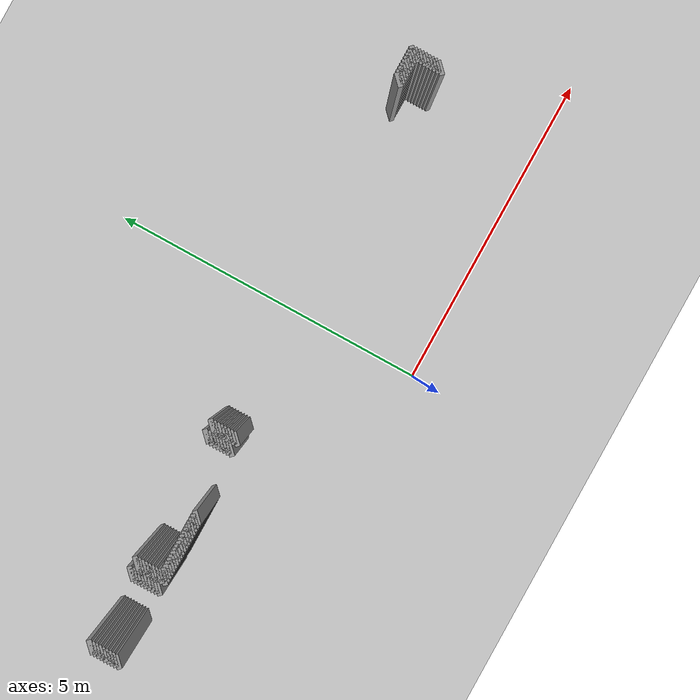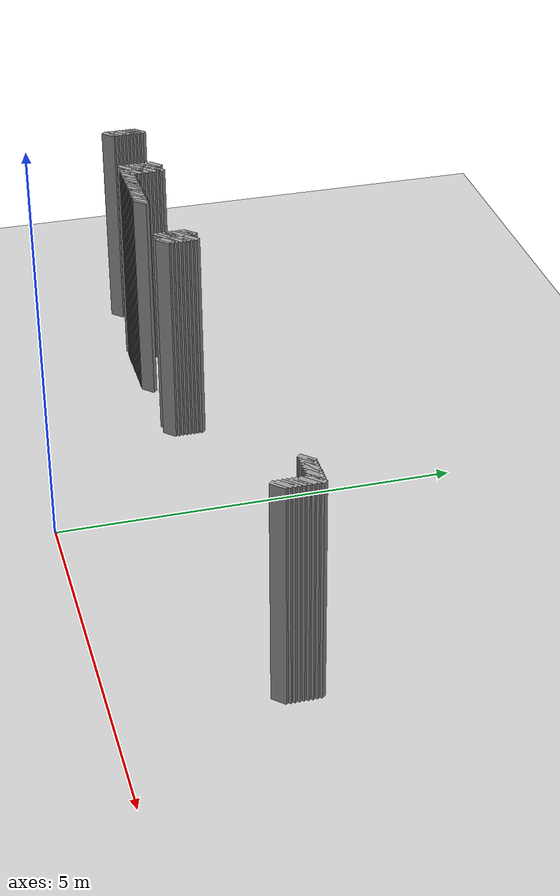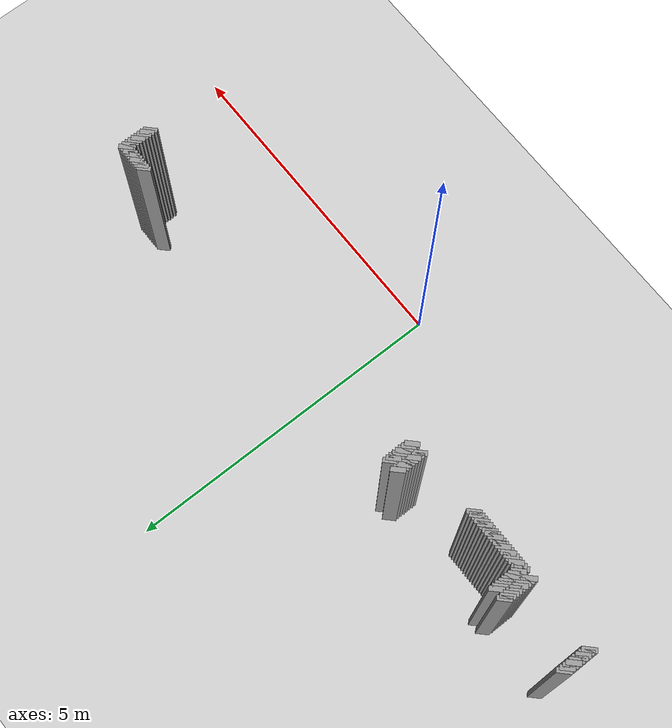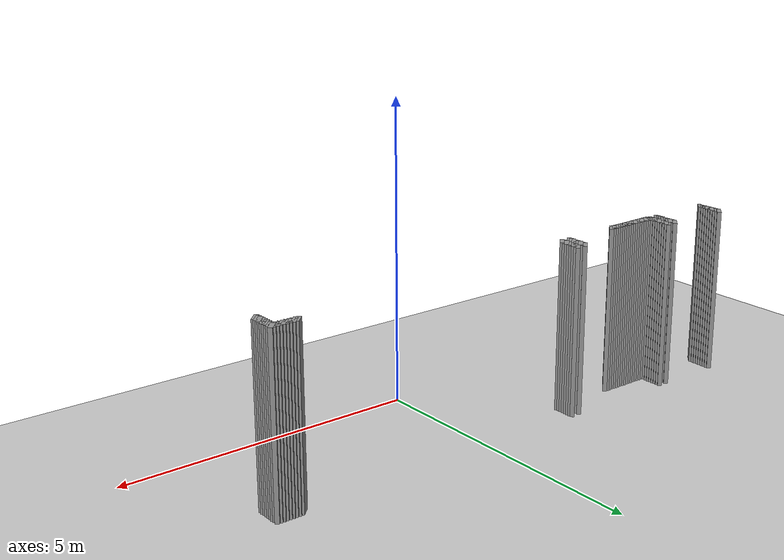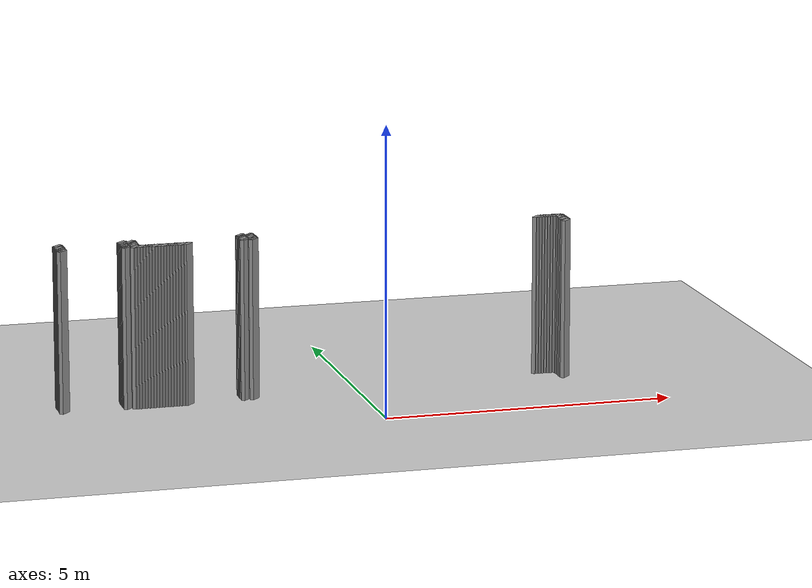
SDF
<sdf version="1.5">
 <world name="default">
  <include><uri>model://ground_plane</uri></include>
  <include><uri>model://sun</uri></include>
  <model name="grey_wall_630">
   <static>1</static>
   <link name="link">
    <pose>3.325 2.225  1.4 0 0 -0.785398163397</pose>
    <collision name="collision"><geometry><box><size>0.0707106781187 .2  2.8</size></box></geometry></collision>
    <visual name="visual">
     <cast_shadows>0</cast_shadows>
     <geometry><box><size>0.0707106781187 .2  2.8</size></box></geometry>
     <material>
      <script>
       <uri>model://grey_wall/materials/scripts</uri>
       <uri>model://grey_wall/materials/textures</uri>
       <name>vrc/grey_wall</name>
      </script>
     </material>
    </visual>
   </link>
  </model>
  <model name="grey_wall_631">
   <static>1</static>
   <link name="link">
    <pose>3.375 2.225  1.4 0 0 -0.785398163397</pose>
    <collision name="collision"><geometry><box><size>0.0707106781187 .2  2.8</size></box></geometry></collision>
    <visual name="visual">
     <cast_shadows>0</cast_shadows>
     <geometry><box><size>0.0707106781187 .2  2.8</size></box></geometry>
     <material>
      <script>
       <uri>model://grey_wall/materials/scripts</uri>
       <uri>model://grey_wall/materials/textures</uri>
       <name>vrc/grey_wall</name>
      </script>
     </material>
    </visual>
   </link>
  </model>
  <model name="grey_wall_632">
   <static>1</static>
   <link name="link">
    <pose>3.425 2.225  1.4 0 0 -0.785398163397</pose>
    <collision name="collision"><geometry><box><size>0.0707106781187 .2  2.8</size></box></geometry></collision>
    <visual name="visual">
     <cast_shadows>0</cast_shadows>
     <geometry><box><size>0.0707106781187 .2  2.8</size></box></geometry>
     <material>
      <script>
       <uri>model://grey_wall/materials/scripts</uri>
       <uri>model://grey_wall/materials/textures</uri>
       <name>vrc/grey_wall</name>
      </script>
     </material>
    </visual>
   </link>
  </model>
  <model name="grey_wall_633">
   <static>1</static>
   <link name="link">
    <pose>3.475 2.225  1.4 0 0 -0.785398163397</pose>
    <collision name="collision"><geometry><box><size>0.0707106781187 .2  2.8</size></box></geometry></collision>
    <visual name="visual">
     <cast_shadows>0</cast_shadows>
     <geometry><box><size>0.0707106781187 .2  2.8</size></box></geometry>
     <material>
      <script>
       <uri>model://grey_wall/materials/scripts</uri>
       <uri>model://grey_wall/materials/textures</uri>
       <name>vrc/grey_wall</name>
      </script>
     </material>
    </visual>
   </link>
  </model>
  <model name="grey_wall_634">
   <static>1</static>
   <link name="link">
    <pose>3.525 2.225  1.4 0 0 -0.785398163397</pose>
    <collision name="collision"><geometry><box><size>0.0707106781187 .2  2.8</size></box></geometry></collision>
    <visual name="visual">
     <cast_shadows>0</cast_shadows>
     <geometry><box><size>0.0707106781187 .2  2.8</size></box></geometry>
     <material>
      <script>
       <uri>model://grey_wall/materials/scripts</uri>
       <uri>model://grey_wall/materials/textures</uri>
       <name>vrc/grey_wall</name>
      </script>
     </material>
    </visual>
   </link>
  </model>
  <model name="grey_wall_635">
   <static>1</static>
   <link name="link">
    <pose>3.575 2.225  1.4 0 0 -0.785398163397</pose>
    <collision name="collision"><geometry><box><size>0.0707106781187 .2  2.8</size></box></geometry></collision>
    <visual name="visual">
     <cast_shadows>0</cast_shadows>
     <geometry><box><size>0.0707106781187 .2  2.8</size></box></geometry>
     <material>
      <script>
       <uri>model://grey_wall/materials/scripts</uri>
       <uri>model://grey_wall/materials/textures</uri>
       <name>vrc/grey_wall</name>
      </script>
     </material>
    </visual>
   </link>
  </model>
  <model name="grey_wall_636">
   <static>1</static>
   <link name="link">
    <pose>3.625 2.225  1.4 0 0 -0.785398163397</pose>
    <collision name="collision"><geometry><box><size>0.0707106781187 .2  2.8</size></box></geometry></collision>
    <visual name="visual">
     <cast_shadows>0</cast_shadows>
     <geometry><box><size>0.0707106781187 .2  2.8</size></box></geometry>
     <material>
      <script>
       <uri>model://grey_wall/materials/scripts</uri>
       <uri>model://grey_wall/materials/textures</uri>
       <name>vrc/grey_wall</name>
      </script>
     </material>
    </visual>
   </link>
  </model>
  <model name="grey_wall_637">
   <static>1</static>
   <link name="link">
    <pose>3.675 2.225  1.4 0 0 -0.785398163397</pose>
    <collision name="collision"><geometry><box><size>0.0707106781187 .2  2.8</size></box></geometry></collision>
    <visual name="visual">
     <cast_shadows>0</cast_shadows>
     <geometry><box><size>0.0707106781187 .2  2.8</size></box></geometry>
     <material>
      <script>
       <uri>model://grey_wall/materials/scripts</uri>
       <uri>model://grey_wall/materials/textures</uri>
       <name>vrc/grey_wall</name>
      </script>
     </material>
    </visual>
   </link>
  </model>
  <model name="grey_wall_638">
   <static>1</static>
   <link name="link">
    <pose>3.725 2.225  1.4 0 0 -0.785398163397</pose>
    <collision name="collision"><geometry><box><size>0.0707106781187 .2  2.8</size></box></geometry></collision>
    <visual name="visual">
     <cast_shadows>0</cast_shadows>
     <geometry><box><size>0.0707106781187 .2  2.8</size></box></geometry>
     <material>
      <script>
       <uri>model://grey_wall/materials/scripts</uri>
       <uri>model://grey_wall/materials/textures</uri>
       <name>vrc/grey_wall</name>
      </script>
     </material>
    </visual>
   </link>
  </model>
  <model name="grey_wall_639">
   <static>1</static>
   <link name="link">
    <pose>-5.125 2.175  1.4 0 0 -0.785398163397</pose>
    <collision name="collision"><geometry><box><size>0.0707106781187 .2  2.8</size></box></geometry></collision>
    <visual name="visual">
     <cast_shadows>0</cast_shadows>
     <geometry><box><size>0.0707106781187 .2  2.8</size></box></geometry>
     <material>
      <script>
       <uri>model://grey_wall/materials/scripts</uri>
       <uri>model://grey_wall/materials/textures</uri>
       <name>vrc/grey_wall</name>
      </script>
     </material>
    </visual>
   </link>
  </model>
  <model name="grey_wall_640">
   <static>1</static>
   <link name="link">
    <pose>-4.025 2.175  1.4 0 0 -0.785398163397</pose>
    <collision name="collision"><geometry><box><size>0.0707106781187 .2  2.8</size></box></geometry></collision>
    <visual name="visual">
     <cast_shadows>0</cast_shadows>
     <geometry><box><size>0.0707106781187 .2  2.8</size></box></geometry>
     <material>
      <script>
       <uri>model://grey_wall/materials/scripts</uri>
       <uri>model://grey_wall/materials/textures</uri>
       <name>vrc/grey_wall</name>
      </script>
     </material>
    </visual>
   </link>
  </model>
  <model name="grey_wall_641">
   <static>1</static>
   <link name="link">
    <pose>-3.875 2.175  1.4 0 0 -0.785398163397</pose>
    <collision name="collision"><geometry><box><size>0.0707106781187 .2  2.8</size></box></geometry></collision>
    <visual name="visual">
     <cast_shadows>0</cast_shadows>
     <geometry><box><size>0.0707106781187 .2  2.8</size></box></geometry>
     <material>
      <script>
       <uri>model://grey_wall/materials/scripts</uri>
       <uri>model://grey_wall/materials/textures</uri>
       <name>vrc/grey_wall</name>
      </script>
     </material>
    </visual>
   </link>
  </model>
  <model name="grey_wall_642">
   <static>1</static>
   <link name="link">
    <pose>-1.975 2.175  1.4 0 0 -0.785398163397</pose>
    <collision name="collision"><geometry><box><size>0.0707106781187 .2  2.8</size></box></geometry></collision>
    <visual name="visual">
     <cast_shadows>0</cast_shadows>
     <geometry><box><size>0.0707106781187 .2  2.8</size></box></geometry>
     <material>
      <script>
       <uri>model://grey_wall/materials/scripts</uri>
       <uri>model://grey_wall/materials/textures</uri>
       <name>vrc/grey_wall</name>
      </script>
     </material>
    </visual>
   </link>
  </model>
  <model name="grey_wall_643">
   <static>1</static>
   <link name="link">
    <pose>-1.825 2.175  1.4 0 0 -0.785398163397</pose>
    <collision name="collision"><geometry><box><size>0.0707106781187 .2  2.8</size></box></geometry></collision>
    <visual name="visual">
     <cast_shadows>0</cast_shadows>
     <geometry><box><size>0.0707106781187 .2  2.8</size></box></geometry>
     <material>
      <script>
       <uri>model://grey_wall/materials/scripts</uri>
       <uri>model://grey_wall/materials/textures</uri>
       <name>vrc/grey_wall</name>
      </script>
     </material>
    </visual>
   </link>
  </model>
  <model name="grey_wall_644">
   <static>1</static>
   <link name="link">
    <pose>3.725 2.175  1.4 0 0 -0.785398163397</pose>
    <collision name="collision"><geometry><box><size>0.0707106781187 .2  2.8</size></box></geometry></collision>
    <visual name="visual">
     <cast_shadows>0</cast_shadows>
     <geometry><box><size>0.0707106781187 .2  2.8</size></box></geometry>
     <material>
      <script>
       <uri>model://grey_wall/materials/scripts</uri>
       <uri>model://grey_wall/materials/textures</uri>
       <name>vrc/grey_wall</name>
      </script>
     </material>
    </visual>
   </link>
  </model>
  <model name="grey_wall_645">
   <static>1</static>
   <link name="link">
    <pose>-5.125 2.125  1.4 0 0 -0.785398163397</pose>
    <collision name="collision"><geometry><box><size>0.0707106781187 .2  2.8</size></box></geometry></collision>
    <visual name="visual">
     <cast_shadows>0</cast_shadows>
     <geometry><box><size>0.0707106781187 .2  2.8</size></box></geometry>
     <material>
      <script>
       <uri>model://grey_wall/materials/scripts</uri>
       <uri>model://grey_wall/materials/textures</uri>
       <name>vrc/grey_wall</name>
      </script>
     </material>
    </visual>
   </link>
  </model>
  <model name="grey_wall_646">
   <static>1</static>
   <link name="link">
    <pose>-4.025 2.125  1.4 0 0 -0.785398163397</pose>
    <collision name="collision"><geometry><box><size>0.0707106781187 .2  2.8</size></box></geometry></collision>
    <visual name="visual">
     <cast_shadows>0</cast_shadows>
     <geometry><box><size>0.0707106781187 .2  2.8</size></box></geometry>
     <material>
      <script>
       <uri>model://grey_wall/materials/scripts</uri>
       <uri>model://grey_wall/materials/textures</uri>
       <name>vrc/grey_wall</name>
      </script>
     </material>
    </visual>
   </link>
  </model>
  <model name="grey_wall_647">
   <static>1</static>
   <link name="link">
    <pose>-3.875 2.125  1.4 0 0 -0.785398163397</pose>
    <collision name="collision"><geometry><box><size>0.0707106781187 .2  2.8</size></box></geometry></collision>
    <visual name="visual">
     <cast_shadows>0</cast_shadows>
     <geometry><box><size>0.0707106781187 .2  2.8</size></box></geometry>
     <material>
      <script>
       <uri>model://grey_wall/materials/scripts</uri>
       <uri>model://grey_wall/materials/textures</uri>
       <name>vrc/grey_wall</name>
      </script>
     </material>
    </visual>
   </link>
  </model>
  <model name="grey_wall_648">
   <static>1</static>
   <link name="link">
    <pose>-1.975 2.125  1.4 0 0 -0.785398163397</pose>
    <collision name="collision"><geometry><box><size>0.0707106781187 .2  2.8</size></box></geometry></collision>
    <visual name="visual">
     <cast_shadows>0</cast_shadows>
     <geometry><box><size>0.0707106781187 .2  2.8</size></box></geometry>
     <material>
      <script>
       <uri>model://grey_wall/materials/scripts</uri>
       <uri>model://grey_wall/materials/textures</uri>
       <name>vrc/grey_wall</name>
      </script>
     </material>
    </visual>
   </link>
  </model>
  <model name="grey_wall_649">
   <static>1</static>
   <link name="link">
    <pose>-1.825 2.125  1.4 0 0 -0.785398163397</pose>
    <collision name="collision"><geometry><box><size>0.0707106781187 .2  2.8</size></box></geometry></collision>
    <visual name="visual">
     <cast_shadows>0</cast_shadows>
     <geometry><box><size>0.0707106781187 .2  2.8</size></box></geometry>
     <material>
      <script>
       <uri>model://grey_wall/materials/scripts</uri>
       <uri>model://grey_wall/materials/textures</uri>
       <name>vrc/grey_wall</name>
      </script>
     </material>
    </visual>
   </link>
  </model>
  <model name="grey_wall_650">
   <static>1</static>
   <link name="link">
    <pose>3.725 2.125  1.4 0 0 -0.785398163397</pose>
    <collision name="collision"><geometry><box><size>0.0707106781187 .2  2.8</size></box></geometry></collision>
    <visual name="visual">
     <cast_shadows>0</cast_shadows>
     <geometry><box><size>0.0707106781187 .2  2.8</size></box></geometry>
     <material>
      <script>
       <uri>model://grey_wall/materials/scripts</uri>
       <uri>model://grey_wall/materials/textures</uri>
       <name>vrc/grey_wall</name>
      </script>
     </material>
    </visual>
   </link>
  </model>
  <model name="grey_wall_651">
   <static>1</static>
   <link name="link">
    <pose>-5.125 2.075  1.4 0 0 -0.785398163397</pose>
    <collision name="collision"><geometry><box><size>0.0707106781187 .2  2.8</size></box></geometry></collision>
    <visual name="visual">
     <cast_shadows>0</cast_shadows>
     <geometry><box><size>0.0707106781187 .2  2.8</size></box></geometry>
     <material>
      <script>
       <uri>model://grey_wall/materials/scripts</uri>
       <uri>model://grey_wall/materials/textures</uri>
       <name>vrc/grey_wall</name>
      </script>
     </material>
    </visual>
   </link>
  </model>
  <model name="grey_wall_652">
   <static>1</static>
   <link name="link">
    <pose>-4.025 2.075  1.4 0 0 -0.785398163397</pose>
    <collision name="collision"><geometry><box><size>0.0707106781187 .2  2.8</size></box></geometry></collision>
    <visual name="visual">
     <cast_shadows>0</cast_shadows>
     <geometry><box><size>0.0707106781187 .2  2.8</size></box></geometry>
     <material>
      <script>
       <uri>model://grey_wall/materials/scripts</uri>
       <uri>model://grey_wall/materials/textures</uri>
       <name>vrc/grey_wall</name>
      </script>
     </material>
    </visual>
   </link>
  </model>
  <model name="grey_wall_653">
   <static>1</static>
   <link name="link">
    <pose>-3.875 2.075  1.4 0 0 -0.785398163397</pose>
    <collision name="collision"><geometry><box><size>0.0707106781187 .2  2.8</size></box></geometry></collision>
    <visual name="visual">
     <cast_shadows>0</cast_shadows>
     <geometry><box><size>0.0707106781187 .2  2.8</size></box></geometry>
     <material>
      <script>
       <uri>model://grey_wall/materials/scripts</uri>
       <uri>model://grey_wall/materials/textures</uri>
       <name>vrc/grey_wall</name>
      </script>
     </material>
    </visual>
   </link>
  </model>
  <model name="grey_wall_654">
   <static>1</static>
   <link name="link">
    <pose>-1.975 2.075  1.4 0 0 -0.785398163397</pose>
    <collision name="collision"><geometry><box><size>0.0707106781187 .2  2.8</size></box></geometry></collision>
    <visual name="visual">
     <cast_shadows>0</cast_shadows>
     <geometry><box><size>0.0707106781187 .2  2.8</size></box></geometry>
     <material>
      <script>
       <uri>model://grey_wall/materials/scripts</uri>
       <uri>model://grey_wall/materials/textures</uri>
       <name>vrc/grey_wall</name>
      </script>
     </material>
    </visual>
   </link>
  </model>
  <model name="grey_wall_655">
   <static>1</static>
   <link name="link">
    <pose>-1.825 2.075  1.4 0 0 -0.785398163397</pose>
    <collision name="collision"><geometry><box><size>0.0707106781187 .2  2.8</size></box></geometry></collision>
    <visual name="visual">
     <cast_shadows>0</cast_shadows>
     <geometry><box><size>0.0707106781187 .2  2.8</size></box></geometry>
     <material>
      <script>
       <uri>model://grey_wall/materials/scripts</uri>
       <uri>model://grey_wall/materials/textures</uri>
       <name>vrc/grey_wall</name>
      </script>
     </material>
    </visual>
   </link>
  </model>
  <model name="grey_wall_656">
   <static>1</static>
   <link name="link">
    <pose>3.725 2.075  1.4 0 0 -0.785398163397</pose>
    <collision name="collision"><geometry><box><size>0.0707106781187 .2  2.8</size></box></geometry></collision>
    <visual name="visual">
     <cast_shadows>0</cast_shadows>
     <geometry><box><size>0.0707106781187 .2  2.8</size></box></geometry>
     <material>
      <script>
       <uri>model://grey_wall/materials/scripts</uri>
       <uri>model://grey_wall/materials/textures</uri>
       <name>vrc/grey_wall</name>
      </script>
     </material>
    </visual>
   </link>
  </model>
  <model name="grey_wall_657">
   <static>1</static>
   <link name="link">
    <pose>-5.125 2.025  1.4 0 0 -0.785398163397</pose>
    <collision name="collision"><geometry><box><size>0.0707106781187 .2  2.8</size></box></geometry></collision>
    <visual name="visual">
     <cast_shadows>0</cast_shadows>
     <geometry><box><size>0.0707106781187 .2  2.8</size></box></geometry>
     <material>
      <script>
       <uri>model://grey_wall/materials/scripts</uri>
       <uri>model://grey_wall/materials/textures</uri>
       <name>vrc/grey_wall</name>
      </script>
     </material>
    </visual>
   </link>
  </model>
  <model name="grey_wall_658">
   <static>1</static>
   <link name="link">
    <pose>-4.025 2.025  1.4 0 0 -0.785398163397</pose>
    <collision name="collision"><geometry><box><size>0.0707106781187 .2  2.8</size></box></geometry></collision>
    <visual name="visual">
     <cast_shadows>0</cast_shadows>
     <geometry><box><size>0.0707106781187 .2  2.8</size></box></geometry>
     <material>
      <script>
       <uri>model://grey_wall/materials/scripts</uri>
       <uri>model://grey_wall/materials/textures</uri>
       <name>vrc/grey_wall</name>
      </script>
     </material>
    </visual>
   </link>
  </model>
  <model name="grey_wall_659">
   <static>1</static>
   <link name="link">
    <pose>-3.875 2.025  1.4 0 0 -0.785398163397</pose>
    <collision name="collision"><geometry><box><size>0.0707106781187 .2  2.8</size></box></geometry></collision>
    <visual name="visual">
     <cast_shadows>0</cast_shadows>
     <geometry><box><size>0.0707106781187 .2  2.8</size></box></geometry>
     <material>
      <script>
       <uri>model://grey_wall/materials/scripts</uri>
       <uri>model://grey_wall/materials/textures</uri>
       <name>vrc/grey_wall</name>
      </script>
     </material>
    </visual>
   </link>
  </model>
  <model name="grey_wall_660">
   <static>1</static>
   <link name="link">
    <pose>-1.975 2.025  1.4 0 0 -0.785398163397</pose>
    <collision name="collision"><geometry><box><size>0.0707106781187 .2  2.8</size></box></geometry></collision>
    <visual name="visual">
     <cast_shadows>0</cast_shadows>
     <geometry><box><size>0.0707106781187 .2  2.8</size></box></geometry>
     <material>
      <script>
       <uri>model://grey_wall/materials/scripts</uri>
       <uri>model://grey_wall/materials/textures</uri>
       <name>vrc/grey_wall</name>
      </script>
     </material>
    </visual>
   </link>
  </model>
  <model name="grey_wall_661">
   <static>1</static>
   <link name="link">
    <pose>-1.825 2.025  1.4 0 0 -0.785398163397</pose>
    <collision name="collision"><geometry><box><size>0.0707106781187 .2  2.8</size></box></geometry></collision>
    <visual name="visual">
     <cast_shadows>0</cast_shadows>
     <geometry><box><size>0.0707106781187 .2  2.8</size></box></geometry>
     <material>
      <script>
       <uri>model://grey_wall/materials/scripts</uri>
       <uri>model://grey_wall/materials/textures</uri>
       <name>vrc/grey_wall</name>
      </script>
     </material>
    </visual>
   </link>
  </model>
  <model name="grey_wall_662">
   <static>1</static>
   <link name="link">
    <pose>3.725 2.025  1.4 0 0 -0.785398163397</pose>
    <collision name="collision"><geometry><box><size>0.0707106781187 .2  2.8</size></box></geometry></collision>
    <visual name="visual">
     <cast_shadows>0</cast_shadows>
     <geometry><box><size>0.0707106781187 .2  2.8</size></box></geometry>
     <material>
      <script>
       <uri>model://grey_wall/materials/scripts</uri>
       <uri>model://grey_wall/materials/textures</uri>
       <name>vrc/grey_wall</name>
      </script>
     </material>
    </visual>
   </link>
  </model>
  <model name="grey_wall_663">
   <static>1</static>
   <link name="link">
    <pose>-5.125 1.975  1.4 0 0 -0.785398163397</pose>
    <collision name="collision"><geometry><box><size>0.0707106781187 .2  2.8</size></box></geometry></collision>
    <visual name="visual">
     <cast_shadows>0</cast_shadows>
     <geometry><box><size>0.0707106781187 .2  2.8</size></box></geometry>
     <material>
      <script>
       <uri>model://grey_wall/materials/scripts</uri>
       <uri>model://grey_wall/materials/textures</uri>
       <name>vrc/grey_wall</name>
      </script>
     </material>
    </visual>
   </link>
  </model>
  <model name="grey_wall_664">
   <static>1</static>
   <link name="link">
    <pose>-4.025 1.975  1.4 0 0 -0.785398163397</pose>
    <collision name="collision"><geometry><box><size>0.0707106781187 .2  2.8</size></box></geometry></collision>
    <visual name="visual">
     <cast_shadows>0</cast_shadows>
     <geometry><box><size>0.0707106781187 .2  2.8</size></box></geometry>
     <material>
      <script>
       <uri>model://grey_wall/materials/scripts</uri>
       <uri>model://grey_wall/materials/textures</uri>
       <name>vrc/grey_wall</name>
      </script>
     </material>
    </visual>
   </link>
  </model>
  <model name="grey_wall_665">
   <static>1</static>
   <link name="link">
    <pose>-3.875 1.975  1.4 0 0 -0.785398163397</pose>
    <collision name="collision"><geometry><box><size>0.0707106781187 .2  2.8</size></box></geometry></collision>
    <visual name="visual">
     <cast_shadows>0</cast_shadows>
     <geometry><box><size>0.0707106781187 .2  2.8</size></box></geometry>
     <material>
      <script>
       <uri>model://grey_wall/materials/scripts</uri>
       <uri>model://grey_wall/materials/textures</uri>
       <name>vrc/grey_wall</name>
      </script>
     </material>
    </visual>
   </link>
  </model>
  <model name="grey_wall_666">
   <static>1</static>
   <link name="link">
    <pose>-1.975 1.975  1.4 0 0 -0.785398163397</pose>
    <collision name="collision"><geometry><box><size>0.0707106781187 .2  2.8</size></box></geometry></collision>
    <visual name="visual">
     <cast_shadows>0</cast_shadows>
     <geometry><box><size>0.0707106781187 .2  2.8</size></box></geometry>
     <material>
      <script>
       <uri>model://grey_wall/materials/scripts</uri>
       <uri>model://grey_wall/materials/textures</uri>
       <name>vrc/grey_wall</name>
      </script>
     </material>
    </visual>
   </link>
  </model>
  <model name="grey_wall_667">
   <static>1</static>
   <link name="link">
    <pose>-1.825 1.975  1.4 0 0 -0.785398163397</pose>
    <collision name="collision"><geometry><box><size>0.0707106781187 .2  2.8</size></box></geometry></collision>
    <visual name="visual">
     <cast_shadows>0</cast_shadows>
     <geometry><box><size>0.0707106781187 .2  2.8</size></box></geometry>
     <material>
      <script>
       <uri>model://grey_wall/materials/scripts</uri>
       <uri>model://grey_wall/materials/textures</uri>
       <name>vrc/grey_wall</name>
      </script>
     </material>
    </visual>
   </link>
  </model>
  <model name="grey_wall_668">
   <static>1</static>
   <link name="link">
    <pose>3.725 1.975  1.4 0 0 -0.785398163397</pose>
    <collision name="collision"><geometry><box><size>0.0707106781187 .2  2.8</size></box></geometry></collision>
    <visual name="visual">
     <cast_shadows>0</cast_shadows>
     <geometry><box><size>0.0707106781187 .2  2.8</size></box></geometry>
     <material>
      <script>
       <uri>model://grey_wall/materials/scripts</uri>
       <uri>model://grey_wall/materials/textures</uri>
       <name>vrc/grey_wall</name>
      </script>
     </material>
    </visual>
   </link>
  </model>
  <model name="grey_wall_669">
   <static>1</static>
   <link name="link">
    <pose>-5.125 1.925  1.4 0 0 -0.785398163397</pose>
    <collision name="collision"><geometry><box><size>0.0707106781187 .2  2.8</size></box></geometry></collision>
    <visual name="visual">
     <cast_shadows>0</cast_shadows>
     <geometry><box><size>0.0707106781187 .2  2.8</size></box></geometry>
     <material>
      <script>
       <uri>model://grey_wall/materials/scripts</uri>
       <uri>model://grey_wall/materials/textures</uri>
       <name>vrc/grey_wall</name>
      </script>
     </material>
    </visual>
   </link>
  </model>
  <model name="grey_wall_670">
   <static>1</static>
   <link name="link">
    <pose>-4.025 1.925  1.4 0 0 -0.785398163397</pose>
    <collision name="collision"><geometry><box><size>0.0707106781187 .2  2.8</size></box></geometry></collision>
    <visual name="visual">
     <cast_shadows>0</cast_shadows>
     <geometry><box><size>0.0707106781187 .2  2.8</size></box></geometry>
     <material>
      <script>
       <uri>model://grey_wall/materials/scripts</uri>
       <uri>model://grey_wall/materials/textures</uri>
       <name>vrc/grey_wall</name>
      </script>
     </material>
    </visual>
   </link>
  </model>
  <model name="grey_wall_671">
   <static>1</static>
   <link name="link">
    <pose>-3.875 1.925  1.4 0 0 -0.785398163397</pose>
    <collision name="collision"><geometry><box><size>0.0707106781187 .2  2.8</size></box></geometry></collision>
    <visual name="visual">
     <cast_shadows>0</cast_shadows>
     <geometry><box><size>0.0707106781187 .2  2.8</size></box></geometry>
     <material>
      <script>
       <uri>model://grey_wall/materials/scripts</uri>
       <uri>model://grey_wall/materials/textures</uri>
       <name>vrc/grey_wall</name>
      </script>
     </material>
    </visual>
   </link>
  </model>
  <model name="grey_wall_672">
   <static>1</static>
   <link name="link">
    <pose>-1.975 1.925  1.4 0 0 -0.785398163397</pose>
    <collision name="collision"><geometry><box><size>0.0707106781187 .2  2.8</size></box></geometry></collision>
    <visual name="visual">
     <cast_shadows>0</cast_shadows>
     <geometry><box><size>0.0707106781187 .2  2.8</size></box></geometry>
     <material>
      <script>
       <uri>model://grey_wall/materials/scripts</uri>
       <uri>model://grey_wall/materials/textures</uri>
       <name>vrc/grey_wall</name>
      </script>
     </material>
    </visual>
   </link>
  </model>
  <model name="grey_wall_673">
   <static>1</static>
   <link name="link">
    <pose>-1.825 1.925  1.4 0 0 -0.785398163397</pose>
    <collision name="collision"><geometry><box><size>0.0707106781187 .2  2.8</size></box></geometry></collision>
    <visual name="visual">
     <cast_shadows>0</cast_shadows>
     <geometry><box><size>0.0707106781187 .2  2.8</size></box></geometry>
     <material>
      <script>
       <uri>model://grey_wall/materials/scripts</uri>
       <uri>model://grey_wall/materials/textures</uri>
       <name>vrc/grey_wall</name>
      </script>
     </material>
    </visual>
   </link>
  </model>
  <model name="grey_wall_674">
   <static>1</static>
   <link name="link">
    <pose>3.725 1.925  1.4 0 0 -0.785398163397</pose>
    <collision name="collision"><geometry><box><size>0.0707106781187 .2  2.8</size></box></geometry></collision>
    <visual name="visual">
     <cast_shadows>0</cast_shadows>
     <geometry><box><size>0.0707106781187 .2  2.8</size></box></geometry>
     <material>
      <script>
       <uri>model://grey_wall/materials/scripts</uri>
       <uri>model://grey_wall/materials/textures</uri>
       <name>vrc/grey_wall</name>
      </script>
     </material>
    </visual>
   </link>
  </model>
  <model name="grey_wall_675">
   <static>1</static>
   <link name="link">
    <pose>-5.125 1.875  1.4 0 0 -0.785398163397</pose>
    <collision name="collision"><geometry><box><size>0.0707106781187 .2  2.8</size></box></geometry></collision>
    <visual name="visual">
     <cast_shadows>0</cast_shadows>
     <geometry><box><size>0.0707106781187 .2  2.8</size></box></geometry>
     <material>
      <script>
       <uri>model://grey_wall/materials/scripts</uri>
       <uri>model://grey_wall/materials/textures</uri>
       <name>vrc/grey_wall</name>
      </script>
     </material>
    </visual>
   </link>
  </model>
  <model name="grey_wall_676">
   <static>1</static>
   <link name="link">
    <pose>-4.025 1.875  1.4 0 0 -0.785398163397</pose>
    <collision name="collision"><geometry><box><size>0.0707106781187 .2  2.8</size></box></geometry></collision>
    <visual name="visual">
     <cast_shadows>0</cast_shadows>
     <geometry><box><size>0.0707106781187 .2  2.8</size></box></geometry>
     <material>
      <script>
       <uri>model://grey_wall/materials/scripts</uri>
       <uri>model://grey_wall/materials/textures</uri>
       <name>vrc/grey_wall</name>
      </script>
     </material>
    </visual>
   </link>
  </model>
  <model name="grey_wall_677">
   <static>1</static>
   <link name="link">
    <pose>-3.875 1.875  1.4 0 0 -0.785398163397</pose>
    <collision name="collision"><geometry><box><size>0.0707106781187 .2  2.8</size></box></geometry></collision>
    <visual name="visual">
     <cast_shadows>0</cast_shadows>
     <geometry><box><size>0.0707106781187 .2  2.8</size></box></geometry>
     <material>
      <script>
       <uri>model://grey_wall/materials/scripts</uri>
       <uri>model://grey_wall/materials/textures</uri>
       <name>vrc/grey_wall</name>
      </script>
     </material>
    </visual>
   </link>
  </model>
  <model name="grey_wall_678">
   <static>1</static>
   <link name="link">
    <pose>-1.975 1.875  1.4 0 0 -0.785398163397</pose>
    <collision name="collision"><geometry><box><size>0.0707106781187 .2  2.8</size></box></geometry></collision>
    <visual name="visual">
     <cast_shadows>0</cast_shadows>
     <geometry><box><size>0.0707106781187 .2  2.8</size></box></geometry>
     <material>
      <script>
       <uri>model://grey_wall/materials/scripts</uri>
       <uri>model://grey_wall/materials/textures</uri>
       <name>vrc/grey_wall</name>
      </script>
     </material>
    </visual>
   </link>
  </model>
  <model name="grey_wall_679">
   <static>1</static>
   <link name="link">
    <pose>-1.825 1.875  1.4 0 0 -0.785398163397</pose>
    <collision name="collision"><geometry><box><size>0.0707106781187 .2  2.8</size></box></geometry></collision>
    <visual name="visual">
     <cast_shadows>0</cast_shadows>
     <geometry><box><size>0.0707106781187 .2  2.8</size></box></geometry>
     <material>
      <script>
       <uri>model://grey_wall/materials/scripts</uri>
       <uri>model://grey_wall/materials/textures</uri>
       <name>vrc/grey_wall</name>
      </script>
     </material>
    </visual>
   </link>
  </model>
  <model name="grey_wall_680">
   <static>1</static>
   <link name="link">
    <pose>3.725 1.875  1.4 0 0 -0.785398163397</pose>
    <collision name="collision"><geometry><box><size>0.0707106781187 .2  2.8</size></box></geometry></collision>
    <visual name="visual">
     <cast_shadows>0</cast_shadows>
     <geometry><box><size>0.0707106781187 .2  2.8</size></box></geometry>
     <material>
      <script>
       <uri>model://grey_wall/materials/scripts</uri>
       <uri>model://grey_wall/materials/textures</uri>
       <name>vrc/grey_wall</name>
      </script>
     </material>
    </visual>
   </link>
  </model>
  <model name="grey_wall_681">
   <static>1</static>
   <link name="link">
    <pose>-5.125 1.825  1.4 0 0 -0.785398163397</pose>
    <collision name="collision"><geometry><box><size>0.0707106781187 .2  2.8</size></box></geometry></collision>
    <visual name="visual">
     <cast_shadows>0</cast_shadows>
     <geometry><box><size>0.0707106781187 .2  2.8</size></box></geometry>
     <material>
      <script>
       <uri>model://grey_wall/materials/scripts</uri>
       <uri>model://grey_wall/materials/textures</uri>
       <name>vrc/grey_wall</name>
      </script>
     </material>
    </visual>
   </link>
  </model>
  <model name="grey_wall_682">
   <static>1</static>
   <link name="link">
    <pose>-4.025 1.825  1.4 0 0 -0.785398163397</pose>
    <collision name="collision"><geometry><box><size>0.0707106781187 .2  2.8</size></box></geometry></collision>
    <visual name="visual">
     <cast_shadows>0</cast_shadows>
     <geometry><box><size>0.0707106781187 .2  2.8</size></box></geometry>
     <material>
      <script>
       <uri>model://grey_wall/materials/scripts</uri>
       <uri>model://grey_wall/materials/textures</uri>
       <name>vrc/grey_wall</name>
      </script>
     </material>
    </visual>
   </link>
  </model>
  <model name="grey_wall_683">
   <static>1</static>
   <link name="link">
    <pose>-3.875 1.825  1.4 0 0 -0.785398163397</pose>
    <collision name="collision"><geometry><box><size>0.0707106781187 .2  2.8</size></box></geometry></collision>
    <visual name="visual">
     <cast_shadows>0</cast_shadows>
     <geometry><box><size>0.0707106781187 .2  2.8</size></box></geometry>
     <material>
      <script>
       <uri>model://grey_wall/materials/scripts</uri>
       <uri>model://grey_wall/materials/textures</uri>
       <name>vrc/grey_wall</name>
      </script>
     </material>
    </visual>
   </link>
  </model>
  <model name="grey_wall_684">
   <static>1</static>
   <link name="link">
    <pose>-1.975 1.825  1.4 0 0 -0.785398163397</pose>
    <collision name="collision"><geometry><box><size>0.0707106781187 .2  2.8</size></box></geometry></collision>
    <visual name="visual">
     <cast_shadows>0</cast_shadows>
     <geometry><box><size>0.0707106781187 .2  2.8</size></box></geometry>
     <material>
      <script>
       <uri>model://grey_wall/materials/scripts</uri>
       <uri>model://grey_wall/materials/textures</uri>
       <name>vrc/grey_wall</name>
      </script>
     </material>
    </visual>
   </link>
  </model>
  <model name="grey_wall_685">
   <static>1</static>
   <link name="link">
    <pose>-1.825 1.825  1.4 0 0 -0.785398163397</pose>
    <collision name="collision"><geometry><box><size>0.0707106781187 .2  2.8</size></box></geometry></collision>
    <visual name="visual">
     <cast_shadows>0</cast_shadows>
     <geometry><box><size>0.0707106781187 .2  2.8</size></box></geometry>
     <material>
      <script>
       <uri>model://grey_wall/materials/scripts</uri>
       <uri>model://grey_wall/materials/textures</uri>
       <name>vrc/grey_wall</name>
      </script>
     </material>
    </visual>
   </link>
  </model>
  <model name="grey_wall_686">
   <static>1</static>
   <link name="link">
    <pose>3.725 1.825  1.4 0 0 -0.785398163397</pose>
    <collision name="collision"><geometry><box><size>0.0707106781187 .2  2.8</size></box></geometry></collision>
    <visual name="visual">
     <cast_shadows>0</cast_shadows>
     <geometry><box><size>0.0707106781187 .2  2.8</size></box></geometry>
     <material>
      <script>
       <uri>model://grey_wall/materials/scripts</uri>
       <uri>model://grey_wall/materials/textures</uri>
       <name>vrc/grey_wall</name>
      </script>
     </material>
    </visual>
   </link>
  </model>
  <model name="grey_wall_687">
   <static>1</static>
   <link name="link">
    <pose>-5.125 1.775  1.4 0 0 -0.785398163397</pose>
    <collision name="collision"><geometry><box><size>0.0707106781187 .2  2.8</size></box></geometry></collision>
    <visual name="visual">
     <cast_shadows>0</cast_shadows>
     <geometry><box><size>0.0707106781187 .2  2.8</size></box></geometry>
     <material>
      <script>
       <uri>model://grey_wall/materials/scripts</uri>
       <uri>model://grey_wall/materials/textures</uri>
       <name>vrc/grey_wall</name>
      </script>
     </material>
    </visual>
   </link>
  </model>
  <model name="grey_wall_688">
   <static>1</static>
   <link name="link">
    <pose>-4.025 1.775  1.4 0 0 -0.785398163397</pose>
    <collision name="collision"><geometry><box><size>0.0707106781187 .2  2.8</size></box></geometry></collision>
    <visual name="visual">
     <cast_shadows>0</cast_shadows>
     <geometry><box><size>0.0707106781187 .2  2.8</size></box></geometry>
     <material>
      <script>
       <uri>model://grey_wall/materials/scripts</uri>
       <uri>model://grey_wall/materials/textures</uri>
       <name>vrc/grey_wall</name>
      </script>
     </material>
    </visual>
   </link>
  </model>
  <model name="grey_wall_689">
   <static>1</static>
   <link name="link">
    <pose>-3.875 1.775  1.4 0 0 -0.785398163397</pose>
    <collision name="collision"><geometry><box><size>0.0707106781187 .2  2.8</size></box></geometry></collision>
    <visual name="visual">
     <cast_shadows>0</cast_shadows>
     <geometry><box><size>0.0707106781187 .2  2.8</size></box></geometry>
     <material>
      <script>
       <uri>model://grey_wall/materials/scripts</uri>
       <uri>model://grey_wall/materials/textures</uri>
       <name>vrc/grey_wall</name>
      </script>
     </material>
    </visual>
   </link>
  </model>
  <model name="grey_wall_690">
   <static>1</static>
   <link name="link">
    <pose>-3.825 1.775  1.4 0 0 -0.785398163397</pose>
    <collision name="collision"><geometry><box><size>0.0707106781187 .2  2.8</size></box></geometry></collision>
    <visual name="visual">
     <cast_shadows>0</cast_shadows>
     <geometry><box><size>0.0707106781187 .2  2.8</size></box></geometry>
     <material>
      <script>
       <uri>model://grey_wall/materials/scripts</uri>
       <uri>model://grey_wall/materials/textures</uri>
       <name>vrc/grey_wall</name>
      </script>
     </material>
    </visual>
   </link>
  </model>
  <model name="grey_wall_691">
   <static>1</static>
   <link name="link">
    <pose>-3.775 1.775  1.4 0 0 -0.785398163397</pose>
    <collision name="collision"><geometry><box><size>0.0707106781187 .2  2.8</size></box></geometry></collision>
    <visual name="visual">
     <cast_shadows>0</cast_shadows>
     <geometry><box><size>0.0707106781187 .2  2.8</size></box></geometry>
     <material>
      <script>
       <uri>model://grey_wall/materials/scripts</uri>
       <uri>model://grey_wall/materials/textures</uri>
       <name>vrc/grey_wall</name>
      </script>
     </material>
    </visual>
   </link>
  </model>
  <model name="grey_wall_692">
   <static>1</static>
   <link name="link">
    <pose>-3.725 1.775  1.4 0 0 -0.785398163397</pose>
    <collision name="collision"><geometry><box><size>0.0707106781187 .2  2.8</size></box></geometry></collision>
    <visual name="visual">
     <cast_shadows>0</cast_shadows>
     <geometry><box><size>0.0707106781187 .2  2.8</size></box></geometry>
     <material>
      <script>
       <uri>model://grey_wall/materials/scripts</uri>
       <uri>model://grey_wall/materials/textures</uri>
       <name>vrc/grey_wall</name>
      </script>
     </material>
    </visual>
   </link>
  </model>
  <model name="grey_wall_693">
   <static>1</static>
   <link name="link">
    <pose>-3.675 1.775  1.4 0 0 -0.785398163397</pose>
    <collision name="collision"><geometry><box><size>0.0707106781187 .2  2.8</size></box></geometry></collision>
    <visual name="visual">
     <cast_shadows>0</cast_shadows>
     <geometry><box><size>0.0707106781187 .2  2.8</size></box></geometry>
     <material>
      <script>
       <uri>model://grey_wall/materials/scripts</uri>
       <uri>model://grey_wall/materials/textures</uri>
       <name>vrc/grey_wall</name>
      </script>
     </material>
    </visual>
   </link>
  </model>
  <model name="grey_wall_694">
   <static>1</static>
   <link name="link">
    <pose>-3.625 1.775  1.4 0 0 -0.785398163397</pose>
    <collision name="collision"><geometry><box><size>0.0707106781187 .2  2.8</size></box></geometry></collision>
    <visual name="visual">
     <cast_shadows>0</cast_shadows>
     <geometry><box><size>0.0707106781187 .2  2.8</size></box></geometry>
     <material>
      <script>
       <uri>model://grey_wall/materials/scripts</uri>
       <uri>model://grey_wall/materials/textures</uri>
       <name>vrc/grey_wall</name>
      </script>
     </material>
    </visual>
   </link>
  </model>
  <model name="grey_wall_695">
   <static>1</static>
   <link name="link">
    <pose>-3.575 1.775  1.4 0 0 -0.785398163397</pose>
    <collision name="collision"><geometry><box><size>0.0707106781187 .2  2.8</size></box></geometry></collision>
    <visual name="visual">
     <cast_shadows>0</cast_shadows>
     <geometry><box><size>0.0707106781187 .2  2.8</size></box></geometry>
     <material>
      <script>
       <uri>model://grey_wall/materials/scripts</uri>
       <uri>model://grey_wall/materials/textures</uri>
       <name>vrc/grey_wall</name>
      </script>
     </material>
    </visual>
   </link>
  </model>
  <model name="grey_wall_696">
   <static>1</static>
   <link name="link">
    <pose>-3.525 1.775  1.4 0 0 -0.785398163397</pose>
    <collision name="collision"><geometry><box><size>0.0707106781187 .2  2.8</size></box></geometry></collision>
    <visual name="visual">
     <cast_shadows>0</cast_shadows>
     <geometry><box><size>0.0707106781187 .2  2.8</size></box></geometry>
     <material>
      <script>
       <uri>model://grey_wall/materials/scripts</uri>
       <uri>model://grey_wall/materials/textures</uri>
       <name>vrc/grey_wall</name>
      </script>
     </material>
    </visual>
   </link>
  </model>
  <model name="grey_wall_697">
   <static>1</static>
   <link name="link">
    <pose>-3.475 1.775  1.4 0 0 -0.785398163397</pose>
    <collision name="collision"><geometry><box><size>0.0707106781187 .2  2.8</size></box></geometry></collision>
    <visual name="visual">
     <cast_shadows>0</cast_shadows>
     <geometry><box><size>0.0707106781187 .2  2.8</size></box></geometry>
     <material>
      <script>
       <uri>model://grey_wall/materials/scripts</uri>
       <uri>model://grey_wall/materials/textures</uri>
       <name>vrc/grey_wall</name>
      </script>
     </material>
    </visual>
   </link>
  </model>
  <model name="grey_wall_698">
   <static>1</static>
   <link name="link">
    <pose>-3.425 1.775  1.4 0 0 -0.785398163397</pose>
    <collision name="collision"><geometry><box><size>0.0707106781187 .2  2.8</size></box></geometry></collision>
    <visual name="visual">
     <cast_shadows>0</cast_shadows>
     <geometry><box><size>0.0707106781187 .2  2.8</size></box></geometry>
     <material>
      <script>
       <uri>model://grey_wall/materials/scripts</uri>
       <uri>model://grey_wall/materials/textures</uri>
       <name>vrc/grey_wall</name>
      </script>
     </material>
    </visual>
   </link>
  </model>
  <model name="grey_wall_699">
   <static>1</static>
   <link name="link">
    <pose>-3.375 1.775  1.4 0 0 -0.785398163397</pose>
    <collision name="collision"><geometry><box><size>0.0707106781187 .2  2.8</size></box></geometry></collision>
    <visual name="visual">
     <cast_shadows>0</cast_shadows>
     <geometry><box><size>0.0707106781187 .2  2.8</size></box></geometry>
     <material>
      <script>
       <uri>model://grey_wall/materials/scripts</uri>
       <uri>model://grey_wall/materials/textures</uri>
       <name>vrc/grey_wall</name>
      </script>
     </material>
    </visual>
   </link>
  </model>
  <model name="grey_wall_700">
   <static>1</static>
   <link name="link">
    <pose>-3.325 1.775  1.4 0 0 -0.785398163397</pose>
    <collision name="collision"><geometry><box><size>0.0707106781187 .2  2.8</size></box></geometry></collision>
    <visual name="visual">
     <cast_shadows>0</cast_shadows>
     <geometry><box><size>0.0707106781187 .2  2.8</size></box></geometry>
     <material>
      <script>
       <uri>model://grey_wall/materials/scripts</uri>
       <uri>model://grey_wall/materials/textures</uri>
       <name>vrc/grey_wall</name>
      </script>
     </material>
    </visual>
   </link>
  </model>
  <model name="grey_wall_701">
   <static>1</static>
   <link name="link">
    <pose>-3.275 1.775  1.4 0 0 -0.785398163397</pose>
    <collision name="collision"><geometry><box><size>0.0707106781187 .2  2.8</size></box></geometry></collision>
    <visual name="visual">
     <cast_shadows>0</cast_shadows>
     <geometry><box><size>0.0707106781187 .2  2.8</size></box></geometry>
     <material>
      <script>
       <uri>model://grey_wall/materials/scripts</uri>
       <uri>model://grey_wall/materials/textures</uri>
       <name>vrc/grey_wall</name>
      </script>
     </material>
    </visual>
   </link>
  </model>
  <model name="grey_wall_702">
   <static>1</static>
   <link name="link">
    <pose>-3.225 1.775  1.4 0 0 -0.785398163397</pose>
    <collision name="collision"><geometry><box><size>0.0707106781187 .2  2.8</size></box></geometry></collision>
    <visual name="visual">
     <cast_shadows>0</cast_shadows>
     <geometry><box><size>0.0707106781187 .2  2.8</size></box></geometry>
     <material>
      <script>
       <uri>model://grey_wall/materials/scripts</uri>
       <uri>model://grey_wall/materials/textures</uri>
       <name>vrc/grey_wall</name>
      </script>
     </material>
    </visual>
   </link>
  </model>
  <model name="grey_wall_703">
   <static>1</static>
   <link name="link">
    <pose>-3.175 1.775  1.4 0 0 -0.785398163397</pose>
    <collision name="collision"><geometry><box><size>0.0707106781187 .2  2.8</size></box></geometry></collision>
    <visual name="visual">
     <cast_shadows>0</cast_shadows>
     <geometry><box><size>0.0707106781187 .2  2.8</size></box></geometry>
     <material>
      <script>
       <uri>model://grey_wall/materials/scripts</uri>
       <uri>model://grey_wall/materials/textures</uri>
       <name>vrc/grey_wall</name>
      </script>
     </material>
    </visual>
   </link>
  </model>
  <model name="grey_wall_704">
   <static>1</static>
   <link name="link">
    <pose>-3.125 1.775  1.4 0 0 -0.785398163397</pose>
    <collision name="collision"><geometry><box><size>0.0707106781187 .2  2.8</size></box></geometry></collision>
    <visual name="visual">
     <cast_shadows>0</cast_shadows>
     <geometry><box><size>0.0707106781187 .2  2.8</size></box></geometry>
     <material>
      <script>
       <uri>model://grey_wall/materials/scripts</uri>
       <uri>model://grey_wall/materials/textures</uri>
       <name>vrc/grey_wall</name>
      </script>
     </material>
    </visual>
   </link>
  </model>
  <model name="grey_wall_705">
   <static>1</static>
   <link name="link">
    <pose>-3.075 1.775  1.4 0 0 -0.785398163397</pose>
    <collision name="collision"><geometry><box><size>0.0707106781187 .2  2.8</size></box></geometry></collision>
    <visual name="visual">
     <cast_shadows>0</cast_shadows>
     <geometry><box><size>0.0707106781187 .2  2.8</size></box></geometry>
     <material>
      <script>
       <uri>model://grey_wall/materials/scripts</uri>
       <uri>model://grey_wall/materials/textures</uri>
       <name>vrc/grey_wall</name>
      </script>
     </material>
    </visual>
   </link>
  </model>
  <model name="grey_wall_706">
   <static>1</static>
   <link name="link">
    <pose>-3.025 1.775  1.4 0 0 -0.785398163397</pose>
    <collision name="collision"><geometry><box><size>0.0707106781187 .2  2.8</size></box></geometry></collision>
    <visual name="visual">
     <cast_shadows>0</cast_shadows>
     <geometry><box><size>0.0707106781187 .2  2.8</size></box></geometry>
     <material>
      <script>
       <uri>model://grey_wall/materials/scripts</uri>
       <uri>model://grey_wall/materials/textures</uri>
       <name>vrc/grey_wall</name>
      </script>
     </material>
    </visual>
   </link>
  </model>
  <model name="grey_wall_707">
   <static>1</static>
   <link name="link">
    <pose>-2.975 1.775  1.4 0 0 -0.785398163397</pose>
    <collision name="collision"><geometry><box><size>0.0707106781187 .2  2.8</size></box></geometry></collision>
    <visual name="visual">
     <cast_shadows>0</cast_shadows>
     <geometry><box><size>0.0707106781187 .2  2.8</size></box></geometry>
     <material>
      <script>
       <uri>model://grey_wall/materials/scripts</uri>
       <uri>model://grey_wall/materials/textures</uri>
       <name>vrc/grey_wall</name>
      </script>
     </material>
    </visual>
   </link>
  </model>
 </world>
</sdf>
